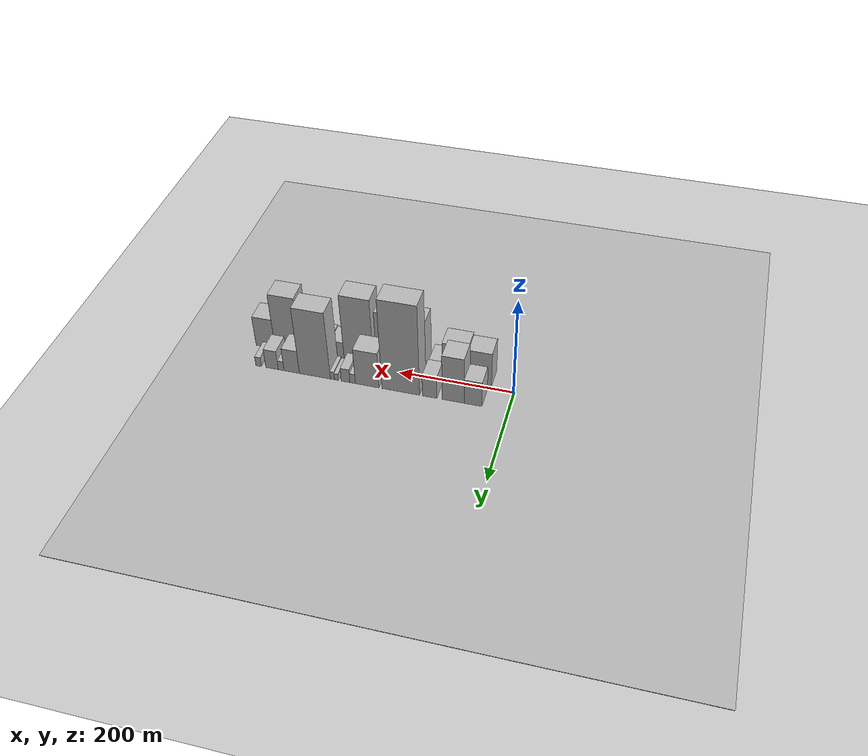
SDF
<?xml version="1.0" encoding="utf-8"?>

<sdf version="1.6">

   <world name="default">

      <gui fullscreen="0">

         <camera name="user_camera">

            <pose>-15 0 4.57585 0 0 0</pose>

            <view_controller>orbit</view_controller>

         </camera>

      </gui>

      <scene>

         <sky>

           <clouds>

             <speed>12</speed>

           </clouds>

         </sky>

         <ambient>0.4 0.4 0.4 1</ambient>

         <background>0.7 0.7 0.7 1</background>

         <shadows>1</shadows>

      </scene>

      <gravity>0 0 -9.8066</gravity>

      <magnetic_field>6e-06 2.3e-05 -4.2e-05</magnetic_field>

      <physics default="0" name="default_physics" type="ode">

         <ode>

            <solver>

               <type>quick</type>

               <iters>10</iters>

               <sor>1.0</sor>

               <use_dynamic_moi_rescaling>0</use_dynamic_moi_rescaling>

            </solver>

            <constraints>

               <cfm>0</cfm>

               <erp>0.2</erp>

               <contact_max_correcting_vel>100</contact_max_correcting_vel>

               <contact_surface_layer>0.001</contact_surface_layer>

            </constraints>

         </ode>

         <max_step_size>0.004</max_step_size>

         <real_time_factor>1</real_time_factor>

         <real_time_update_rate>250</real_time_update_rate>

      </physics>

      <light name="sun" type="directional">

         <cast_shadows>1</cast_shadows>

         <pose>0 0 10 0 0 0</pose>

         <diffuse>0.8 0.8 0.8 1</diffuse>

         <specular>0.2 0.2 0.2 1</specular>

         <attenuation>

            <range>1000</range>

            <constant>0.9</constant>

            <linear>0.01</linear>

            <quadratic>0.001</quadratic>

         </attenuation>

         <direction>-0.5 0.1 -0.9</direction>

      </light>

      <include>

         <name>ground_plane_1</name>

         <uri>model://HANNAS_ground_plane</uri>

         <pose>0 0 0  0 0 0</pose>

      </include>

      <include>

         <name>ground_plane_2</name>

         <uri>model://HANNAS_ground_plane</uri>

         <pose>100 0 0  0 0 0</pose>

      </include>

      <model name="building_1">

         <static>1</static>

         <pose frame="">60.2377 24.5000 0 0.000000 0.000000 1.570796</pose>

         <link name="link">

            <pose frame="">0 0 27.00 0 0 0</pose>

            <collision name="collision">

               <geometry>

                  <box>

                     <size>40.0000 30.4754 54.0000</size>

                  </box>

               </geometry>

               <max_contacts>10</max_contacts>

               <surface>

                  <contact>

                     <ode/>

                  </contact>

                  <bounce/>

                  <friction>

                     <torsional>

                        <ode/>

                     </torsional>

                     <ode/>

                  </friction>

               </surface>

            </collision>

            <visual name="visual">

               <cast_shadows>0</cast_shadows>

               <geometry>

                  <box>

                     <size>40.0000 30.4754 54.0000</size>

                  </box>

               </geometry>

               <material>

                  <script>

                     <uri>model://HANNAS_wall/materials/scripts</uri>

                     <uri>model://HANNAS_wall/materials/textures</uri>

                     <name>vrc/HANNAS_wall</name>

                  </script>

               </material>

            </visual>

            <self_collide>0</self_collide>

            <enable_wind>0</enable_wind>

            <kinematic>0</kinematic>

         </link>

      </model>

      <model name="building_2">

         <static>1</static>

         <pose frame="">94.3330 24.5000 0 0.000000 0.000000 1.570796</pose>

         <link name="link">

            <pose frame="">0 0 49.50 0 0 0</pose>

            <collision name="collision">

               <geometry>

                  <box>

                     <size>40.0000 37.7152 99.0000</size>

                  </box>

               </geometry>

               <max_contacts>10</max_contacts>

               <surface>

                  <contact>

                     <ode/>

                  </contact>

                  <bounce/>

                  <friction>

                     <torsional>

                        <ode/>

                     </torsional>

                     <ode/>

                  </friction>

               </surface>

            </collision>

            <visual name="visual">

               <cast_shadows>0</cast_shadows>

               <geometry>

                  <box>

                     <size>40.0000 37.7152 99.0000</size>

                  </box>

               </geometry>

               <material>

                  <script>

                     <uri>model://HANNAS_wall/materials/scripts</uri>

                     <uri>model://HANNAS_wall/materials/textures</uri>

                     <name>vrc/HANNAS_wall</name>

                  </script>

               </material>

            </visual>

            <self_collide>0</self_collide>

            <enable_wind>0</enable_wind>

            <kinematic>0</kinematic>

         </link>

      </model>

      <model name="building_3">

         <static>1</static>

         <pose frame="">134.7354 24.5000 0 0.000000 0.000000 1.570796</pose>

         <link name="link">

            <pose frame="">0 0 24.00 0 0 0</pose>

            <collision name="collision">

               <geometry>

                  <box>

                     <size>40.0000 25.0895 48.0000</size>

                  </box>

               </geometry>

               <max_contacts>10</max_contacts>

               <surface>

                  <contact>

                     <ode/>

                  </contact>

                  <bounce/>

                  <friction>

                     <torsional>

                        <ode/>

                     </torsional>

                     <ode/>

                  </friction>

               </surface>

            </collision>

            <visual name="visual">

               <cast_shadows>0</cast_shadows>

               <geometry>

                  <box>

                     <size>40.0000 25.0895 48.0000</size>

                  </box>

               </geometry>

               <material>

                  <script>

                     <uri>model://HANNAS_wall/materials/scripts</uri>

                     <uri>model://HANNAS_wall/materials/textures</uri>

                     <name>vrc/HANNAS_wall</name>

                  </script>

               </material>

            </visual>

            <self_collide>0</self_collide>

            <enable_wind>0</enable_wind>

            <kinematic>0</kinematic>

         </link>

      </model>

      <model name="building_4">

         <static>1</static>

         <pose frame="">185.3391 24.5000 0 0.000000 0.000000 1.570796</pose>

         <link name="link">

            <pose frame="">0 0 97.50 0 0 0</pose>

            <collision name="collision">

               <geometry>

                  <box>

                     <size>40.0000 66.1177 195.0000</size>

                  </box>

               </geometry>

               <max_contacts>10</max_contacts>

               <surface>

                  <contact>

                     <ode/>

                  </contact>

                  <bounce/>

                  <friction>

                     <torsional>

                        <ode/>

                     </torsional>

                     <ode/>

                  </friction>

               </surface>

            </collision>

            <visual name="visual">

               <cast_shadows>0</cast_shadows>

               <geometry>

                  <box>

                     <size>40.0000 66.1177 195.0000</size>

                  </box>

               </geometry>

               <material>

                  <script>

                     <uri>model://HANNAS_wall/materials/scripts</uri>

                     <uri>model://HANNAS_wall/materials/textures</uri>

                     <name>vrc/HANNAS_wall</name>

                  </script>

               </material>

            </visual>

            <self_collide>0</self_collide>

            <enable_wind>0</enable_wind>

            <kinematic>0</kinematic>

         </link>

      </model>

      <model name="building_5">

         <static>1</static>

         <pose frame="">244.4486 24.5000 0 0.000000 0.000000 1.570796</pose>

         <link name="link">

            <pose frame="">0 0 39.00 0 0 0</pose>

            <collision name="collision">

               <geometry>

                  <box>

                     <size>40.0000 42.1014 78.0000</size>

                  </box>

               </geometry>

               <max_contacts>10</max_contacts>

               <surface>

                  <contact>

                     <ode/>

                  </contact>

                  <bounce/>

                  <friction>

                     <torsional>

                        <ode/>

                     </torsional>

                     <ode/>

                  </friction>

               </surface>

            </collision>

            <visual name="visual">

               <cast_shadows>0</cast_shadows>

               <geometry>

                  <box>

                     <size>40.0000 42.1014 78.0000</size>

                  </box>

               </geometry>

               <material>

                  <script>

                     <uri>model://HANNAS_wall/materials/scripts</uri>

                     <uri>model://HANNAS_wall/materials/textures</uri>

                     <name>vrc/HANNAS_wall</name>

                  </script>

               </material>

            </visual>

            <self_collide>0</self_collide>

            <enable_wind>0</enable_wind>

            <kinematic>0</kinematic>

         </link>

      </model>

      <model name="building_6">

         <static>1</static>

         <pose frame="">270.3058 24.5000 0 0.000000 0.000000 1.570796</pose>

         <link name="link">

            <pose frame="">0 0 10.50 0 0 0</pose>

            <collision name="collision">

               <geometry>

                  <box>

                     <size>40.0000 9.6129 21.0000</size>

                  </box>

               </geometry>

               <max_contacts>10</max_contacts>

               <surface>

                  <contact>

                     <ode/>

                  </contact>

                  <bounce/>

                  <friction>

                     <torsional>

                        <ode/>

                     </torsional>

                     <ode/>

                  </friction>

               </surface>

            </collision>

            <visual name="visual">

               <cast_shadows>0</cast_shadows>

               <geometry>

                  <box>

                     <size>40.0000 9.6129 21.0000</size>

                  </box>

               </geometry>

               <material>

                  <script>

                     <uri>model://HANNAS_wall/materials/scripts</uri>

                     <uri>model://HANNAS_wall/materials/textures</uri>

                     <name>vrc/HANNAS_wall</name>

                  </script>

               </material>

            </visual>

            <self_collide>0</self_collide>

            <enable_wind>0</enable_wind>

            <kinematic>0</kinematic>

         </link>

      </model>

      <model name="building_7">

         <static>1</static>

         <pose frame="">282.9317 24.5000 0 0.000000 0.000000 1.570796</pose>

         <link name="link">

            <pose frame="">0 0 15.00 0 0 0</pose>

            <collision name="collision">

               <geometry>

                  <box>

                     <size>40.0000 15.6388 30.0000</size>

                  </box>

               </geometry>

               <max_contacts>10</max_contacts>

               <surface>

                  <contact>

                     <ode/>

                  </contact>

                  <bounce/>

                  <friction>

                     <torsional>

                        <ode/>

                     </torsional>

                     <ode/>

                  </friction>

               </surface>

            </collision>

            <visual name="visual">

               <cast_shadows>0</cast_shadows>

               <geometry>

                  <box>

                     <size>40.0000 15.6388 30.0000</size>

                  </box>

               </geometry>

               <material>

                  <script>

                     <uri>model://HANNAS_wall/materials/scripts</uri>

                     <uri>model://HANNAS_wall/materials/textures</uri>

                     <name>vrc/HANNAS_wall</name>

                  </script>

               </material>

            </visual>

            <self_collide>0</self_collide>

            <enable_wind>0</enable_wind>

            <kinematic>0</kinematic>

         </link>

      </model>

      <model name="building_8">

         <static>1</static>

         <pose frame="">299.2666 24.5000 0 0.000000 0.000000 1.570796</pose>

         <link name="link">

            <pose frame="">0 0 7.50 0 0 0</pose>

            <collision name="collision">

               <geometry>

                  <box>

                     <size>40.0000 7.0310 15.0000</size>

                  </box>

               </geometry>

               <max_contacts>10</max_contacts>

               <surface>

                  <contact>

                     <ode/>

                  </contact>

                  <bounce/>

                  <friction>

                     <torsional>

                        <ode/>

                     </torsional>

                     <ode/>

                  </friction>

               </surface>

            </collision>

            <visual name="visual">

               <cast_shadows>0</cast_shadows>

               <geometry>

                  <box>

                     <size>40.0000 7.0310 15.0000</size>

                  </box>

               </geometry>

               <material>

                  <script>

                     <uri>model://HANNAS_wall/materials/scripts</uri>

                     <uri>model://HANNAS_wall/materials/textures</uri>

                     <name>vrc/HANNAS_wall</name>

                  </script>

               </material>

            </visual>

            <self_collide>0</self_collide>

            <enable_wind>0</enable_wind>

            <kinematic>0</kinematic>

         </link>

      </model>

      <model name="building_9">

         <static>1</static>

         <pose frame="">306.3951 24.5000 0 0.000000 0.000000 1.570796</pose>

         <link name="link">

            <pose frame="">0 0 9.00 0 0 0</pose>

            <collision name="collision">

               <geometry>

                  <box>

                     <size>40.0000 7.2258 18.0000</size>

                  </box>

               </geometry>

               <max_contacts>10</max_contacts>

               <surface>

                  <contact>

                     <ode/>

                  </contact>

                  <bounce/>

                  <friction>

                     <torsional>

                        <ode/>

                     </torsional>

                     <ode/>

                  </friction>

               </surface>

            </collision>

            <visual name="visual">

               <cast_shadows>0</cast_shadows>

               <geometry>

                  <box>

                     <size>40.0000 7.2258 18.0000</size>

                  </box>

               </geometry>

               <material>

                  <script>

                     <uri>model://HANNAS_wall/materials/scripts</uri>

                     <uri>model://HANNAS_wall/materials/textures</uri>

                     <name>vrc/HANNAS_wall</name>

                  </script>

               </material>

            </visual>

            <self_collide>0</self_collide>

            <enable_wind>0</enable_wind>

            <kinematic>0</kinematic>

         </link>

      </model>

      <model name="building_10">

         <static>1</static>

         <pose frame="">338.0191 24.5000 0 0.000000 0.000000 1.570796</pose>

         <link name="link">

            <pose frame="">0 0 73.50 0 0 0</pose>

            <collision name="collision">

               <geometry>

                  <box>

                     <size>40.0000 56.0221 147.0000</size>

                  </box>

               </geometry>

               <max_contacts>10</max_contacts>

               <surface>

                  <contact>

                     <ode/>

                  </contact>

                  <bounce/>

                  <friction>

                     <torsional>

                        <ode/>

                     </torsional>

                     <ode/>

                  </friction>

               </surface>

            </collision>

            <visual name="visual">

               <cast_shadows>0</cast_shadows>

               <geometry>

                  <box>

                     <size>40.0000 56.0221 147.0000</size>

                  </box>

               </geometry>

               <material>

                  <script>

                     <uri>model://HANNAS_wall/materials/scripts</uri>

                     <uri>model://HANNAS_wall/materials/textures</uri>

                     <name>vrc/HANNAS_wall</name>

                  </script>

               </material>

            </visual>

            <self_collide>0</self_collide>

            <enable_wind>0</enable_wind>

            <kinematic>0</kinematic>

         </link>

      </model>

      <model name="building_11">

         <static>1</static>

         <pose frame="">379.9936 24.5000 0 0.000000 0.000000 1.570796</pose>

         <link name="link">

            <pose frame="">0 0 25.50 0 0 0</pose>

            <collision name="collision">

               <geometry>

                  <box>

                     <size>40.0000 27.9270 51.0000</size>

                  </box>

               </geometry>

               <max_contacts>10</max_contacts>

               <surface>

                  <contact>

                     <ode/>

                  </contact>

                  <bounce/>

                  <friction>

                     <torsional>

                        <ode/>

                     </torsional>

                     <ode/>

                  </friction>

               </surface>

            </collision>

            <visual name="visual">

               <cast_shadows>0</cast_shadows>

               <geometry>

                  <box>

                     <size>40.0000 27.9270 51.0000</size>

                  </box>

               </geometry>

               <material>

                  <script>

                     <uri>model://HANNAS_wall/materials/scripts</uri>

                     <uri>model://HANNAS_wall/materials/textures</uri>

                     <name>vrc/HANNAS_wall</name>

                  </script>

               </material>

            </visual>

            <self_collide>0</self_collide>

            <enable_wind>0</enable_wind>

            <kinematic>0</kinematic>

         </link>

      </model>

      <model name="building_12">

         <static>1</static>

         <pose frame="">399.2017 24.5000 0 0.000000 0.000000 1.570796</pose>

         <link name="link">

            <pose frame="">0 0 10.50 0 0 0</pose>

            <collision name="collision">

               <geometry>

                  <box>

                     <size>40.0000 10.4891 21.0000</size>

                  </box>

               </geometry>

               <max_contacts>10</max_contacts>

               <surface>

                  <contact>

                     <ode/>

                  </contact>

                  <bounce/>

                  <friction>

                     <torsional>

                        <ode/>

                     </torsional>

                     <ode/>

                  </friction>

               </surface>

            </collision>

            <visual name="visual">

               <cast_shadows>0</cast_shadows>

               <geometry>

                  <box>

                     <size>40.0000 10.4891 21.0000</size>

                  </box>

               </geometry>

               <material>

                  <script>

                     <uri>model://HANNAS_wall/materials/scripts</uri>

                     <uri>model://HANNAS_wall/materials/textures</uri>

                     <name>vrc/HANNAS_wall</name>

                  </script>

               </material>

            </visual>

            <self_collide>0</self_collide>

            <enable_wind>0</enable_wind>

            <kinematic>0</kinematic>

         </link>

      </model>

      <model name="building_13">

         <static>1</static>

         <pose frame="">415.9238 24.5000 0 0.000000 0.000000 1.570796</pose>

         <link name="link">

            <pose frame="">0 0 21.00 0 0 0</pose>

            <collision name="collision">

               <geometry>

                  <box>

                     <size>40.0000 22.9552 42.0000</size>

                  </box>

               </geometry>

               <max_contacts>10</max_contacts>

               <surface>

                  <contact>

                     <ode/>

                  </contact>

                  <bounce/>

                  <friction>

                     <torsional>

                        <ode/>

                     </torsional>

                     <ode/>

                  </friction>

               </surface>

            </collision>

            <visual name="visual">

               <cast_shadows>0</cast_shadows>

               <geometry>

                  <box>

                     <size>40.0000 22.9552 42.0000</size>

                  </box>

               </geometry>

               <material>

                  <script>

                     <uri>model://HANNAS_wall/materials/scripts</uri>

                     <uri>model://HANNAS_wall/materials/textures</uri>

                     <name>vrc/HANNAS_wall</name>

                  </script>

               </material>

            </visual>

            <self_collide>0</self_collide>

            <enable_wind>0</enable_wind>

            <kinematic>0</kinematic>

         </link>

      </model>

      <model name="building_14">

         <static>1</static>

         <pose frame="">440.4947 24.5000 0 0.000000 0.000000 1.570796</pose>

         <link name="link">

            <pose frame="">0 0 10.50 0 0 0</pose>

            <collision name="collision">

               <geometry>

                  <box>

                     <size>40.0000 10.1867 21.0000</size>

                  </box>

               </geometry>

               <max_contacts>10</max_contacts>

               <surface>

                  <contact>

                     <ode/>

                  </contact>

                  <bounce/>

                  <friction>

                     <torsional>

                        <ode/>

                     </torsional>

                     <ode/>

                  </friction>

               </surface>

            </collision>

            <visual name="visual">

               <cast_shadows>0</cast_shadows>

               <geometry>

                  <box>

                     <size>40.0000 10.1867 21.0000</size>

                  </box>

               </geometry>

               <material>

                  <script>

                     <uri>model://HANNAS_wall/materials/scripts</uri>

                     <uri>model://HANNAS_wall/materials/textures</uri>

                     <name>vrc/HANNAS_wall</name>

                  </script>

               </material>

            </visual>

            <self_collide>0</self_collide>

            <enable_wind>0</enable_wind>

            <kinematic>0</kinematic>

         </link>

      </model>

      <model name="building_15">

         <static>1</static>

         <pose frame="">60.3932 -24.5000 0 0.000000 0.000000 1.570796</pose>

         <link name="link">

            <pose frame="">0 0 37.50 0 0 0</pose>

            <collision name="collision">

               <geometry>

                  <box>

                     <size>40.0000 40.7864 75.0000</size>

                  </box>

               </geometry>

               <max_contacts>10</max_contacts>

               <surface>

                  <contact>

                     <ode/>

                  </contact>

                  <bounce/>

                  <friction>

                     <torsional>

                        <ode/>

                     </torsional>

                     <ode/>

                  </friction>

               </surface>

            </collision>

            <visual name="visual">

               <cast_shadows>0</cast_shadows>

               <geometry>

                  <box>

                     <size>40.0000 40.7864 75.0000</size>

                  </box>

               </geometry>

               <material>

                  <script>

                     <uri>model://HANNAS_wall/materials/scripts</uri>

                     <uri>model://HANNAS_wall/materials/textures</uri>

                     <name>vrc/HANNAS_wall</name>

                  </script>

               </material>

            </visual>

            <self_collide>0</self_collide>

            <enable_wind>0</enable_wind>

            <kinematic>0</kinematic>

         </link>

      </model>

      <model name="building_16">

         <static>1</static>

         <pose frame="">103.4413 -24.5000 0 0.000000 0.000000 1.570796</pose>

         <link name="link">

            <pose frame="">0 0 40.50 0 0 0</pose>

            <collision name="collision">

               <geometry>

                  <box>

                     <size>40.0000 45.3098 81.0000</size>

                  </box>

               </geometry>

               <max_contacts>10</max_contacts>

               <surface>

                  <contact>

                     <ode/>

                  </contact>

                  <bounce/>

                  <friction>

                     <torsional>

                        <ode/>

                     </torsional>

                     <ode/>

                  </friction>

               </surface>

            </collision>

            <visual name="visual">

               <cast_shadows>0</cast_shadows>

               <geometry>

                  <box>

                     <size>40.0000 45.3098 81.0000</size>

                  </box>

               </geometry>

               <material>

                  <script>

                     <uri>model://HANNAS_wall/materials/scripts</uri>

                     <uri>model://HANNAS_wall/materials/textures</uri>

                     <name>vrc/HANNAS_wall</name>

                  </script>

               </material>

            </visual>

            <self_collide>0</self_collide>

            <enable_wind>0</enable_wind>

            <kinematic>0</kinematic>

         </link>

      </model>

      <model name="building_17">

         <static>1</static>

         <pose frame="">137.3759 -24.5000 0 0.000000 0.000000 1.570796</pose>

         <link name="link">

            <pose frame="">0 0 19.50 0 0 0</pose>

            <collision name="collision">

               <geometry>

                  <box>

                     <size>40.0000 22.5594 39.0000</size>

                  </box>

               </geometry>

               <max_contacts>10</max_contacts>

               <surface>

                  <contact>

                     <ode/>

                  </contact>

                  <bounce/>

                  <friction>

                     <torsional>

                        <ode/>

                     </torsional>

                     <ode/>

                  </friction>

               </surface>

            </collision>

            <visual name="visual">

               <cast_shadows>0</cast_shadows>

               <geometry>

                  <box>

                     <size>40.0000 22.5594 39.0000</size>

                  </box>

               </geometry>

               <material>

                  <script>

                     <uri>model://HANNAS_wall/materials/scripts</uri>

                     <uri>model://HANNAS_wall/materials/textures</uri>

                     <name>vrc/HANNAS_wall</name>

                  </script>

               </material>

            </visual>

            <self_collide>0</self_collide>

            <enable_wind>0</enable_wind>

            <kinematic>0</kinematic>

         </link>

      </model>

      <model name="building_18">

         <static>1</static>

         <pose frame="">178.7243 -24.5000 0 0.000000 0.000000 1.570796</pose>

         <link name="link">

            <pose frame="">0 0 58.50 0 0 0</pose>

            <collision name="collision">

               <geometry>

                  <box>

                     <size>40.0000 46.1374 117.0000</size>

                  </box>

               </geometry>

               <max_contacts>10</max_contacts>

               <surface>

                  <contact>

                     <ode/>

                  </contact>

                  <bounce/>

                  <friction>

                     <torsional>

                        <ode/>

                     </torsional>

                     <ode/>

                  </friction>

               </surface>

            </collision>

            <visual name="visual">

               <cast_shadows>0</cast_shadows>

               <geometry>

                  <box>

                     <size>40.0000 46.1374 117.0000</size>

                  </box>

               </geometry>

               <material>

                  <script>

                     <uri>model://HANNAS_wall/materials/scripts</uri>

                     <uri>model://HANNAS_wall/materials/textures</uri>

                     <name>vrc/HANNAS_wall</name>

                  </script>

               </material>

            </visual>

            <self_collide>0</self_collide>

            <enable_wind>0</enable_wind>

            <kinematic>0</kinematic>

         </link>

      </model>

      <model name="building_19">

         <static>1</static>

         <pose frame="">222.1818 -24.5000 0 0.000000 0.000000 1.570796</pose>

         <link name="link">

            <pose frame="">0 0 61.50 0 0 0</pose>

            <collision name="collision">

               <geometry>

                  <box>

                     <size>40.0000 40.7775 123.0000</size>

                  </box>

               </geometry>

               <max_contacts>10</max_contacts>

               <surface>

                  <contact>

                     <ode/>

                  </contact>

                  <bounce/>

                  <friction>

                     <torsional>

                        <ode/>

                     </torsional>

                     <ode/>

                  </friction>

               </surface>

            </collision>

            <visual name="visual">

               <cast_shadows>0</cast_shadows>

               <geometry>

                  <box>

                     <size>40.0000 40.7775 123.0000</size>

                  </box>

               </geometry>

               <material>

                  <script>

                     <uri>model://HANNAS_wall/materials/scripts</uri>

                     <uri>model://HANNAS_wall/materials/textures</uri>

                     <name>vrc/HANNAS_wall</name>

                  </script>

               </material>

            </visual>

            <self_collide>0</self_collide>

            <enable_wind>0</enable_wind>

            <kinematic>0</kinematic>

         </link>

      </model>

      <model name="building_20">

         <static>1</static>

         <pose frame="">275.0871 -24.5000 0 0.000000 0.000000 1.570796</pose>

         <link name="link">

            <pose frame="">0 0 73.50 0 0 0</pose>

            <collision name="collision">

               <geometry>

                  <box>

                     <size>40.0000 53.0330 147.0000</size>

                  </box>

               </geometry>

               <max_contacts>10</max_contacts>

               <surface>

                  <contact>

                     <ode/>

                  </contact>

                  <bounce/>

                  <friction>

                     <torsional>

                        <ode/>

                     </torsional>

                     <ode/>

                  </friction>

               </surface>

            </collision>

            <visual name="visual">

               <cast_shadows>0</cast_shadows>

               <geometry>

                  <box>

                     <size>40.0000 53.0330 147.0000</size>

                  </box>

               </geometry>

               <material>

                  <script>

                     <uri>model://HANNAS_wall/materials/scripts</uri>

                     <uri>model://HANNAS_wall/materials/textures</uri>

                     <name>vrc/HANNAS_wall</name>

                  </script>

               </material>

            </visual>

            <self_collide>0</self_collide>

            <enable_wind>0</enable_wind>

            <kinematic>0</kinematic>

         </link>

      </model>

      <model name="building_21">

         <static>1</static>

         <pose frame="">312.4936 -24.5000 0 0.000000 0.000000 1.570796</pose>

         <link name="link">

            <pose frame="">0 0 21.00 0 0 0</pose>

            <collision name="collision">

               <geometry>

                  <box>

                     <size>40.0000 21.7801 42.0000</size>

                  </box>

               </geometry>

               <max_contacts>10</max_contacts>

               <surface>

                  <contact>

                     <ode/>

                  </contact>

                  <bounce/>

                  <friction>

                     <torsional>

                        <ode/>

                     </torsional>

                     <ode/>

                  </friction>

               </surface>

            </collision>

            <visual name="visual">

               <cast_shadows>0</cast_shadows>

               <geometry>

                  <box>

                     <size>40.0000 21.7801 42.0000</size>

                  </box>

               </geometry>

               <material>

                  <script>

                     <uri>model://HANNAS_wall/materials/scripts</uri>

                     <uri>model://HANNAS_wall/materials/textures</uri>

                     <name>vrc/HANNAS_wall</name>

                  </script>

               </material>

            </visual>

            <self_collide>0</self_collide>

            <enable_wind>0</enable_wind>

            <kinematic>0</kinematic>

         </link>

      </model>

      <model name="building_22">

         <static>1</static>

         <pose frame="">334.6369 -24.5000 0 0.000000 0.000000 1.570796</pose>

         <link name="link">

            <pose frame="">0 0 22.50 0 0 0</pose>

            <collision name="collision">

               <geometry>

                  <box>

                     <size>40.0000 22.5064 45.0000</size>

                  </box>

               </geometry>

               <max_contacts>10</max_contacts>

               <surface>

                  <contact>

                     <ode/>

                  </contact>

                  <bounce/>

                  <friction>

                     <torsional>

                        <ode/>

                     </torsional>

                     <ode/>

                  </friction>

               </surface>

            </collision>

            <visual name="visual">

               <cast_shadows>0</cast_shadows>

               <geometry>

                  <box>

                     <size>40.0000 22.5064 45.0000</size>

                  </box>

               </geometry>

               <material>

                  <script>

                     <uri>model://HANNAS_wall/materials/scripts</uri>

                     <uri>model://HANNAS_wall/materials/textures</uri>

                     <name>vrc/HANNAS_wall</name>

                  </script>

               </material>

            </visual>

            <self_collide>0</self_collide>

            <enable_wind>0</enable_wind>

            <kinematic>0</kinematic>

         </link>

      </model>

      <model name="building_23">

         <static>1</static>

         <pose frame="">364.2754 -24.5000 0 0.000000 0.000000 1.570796</pose>

         <link name="link">

            <pose frame="">0 0 36.00 0 0 0</pose>

            <collision name="collision">

               <geometry>

                  <box>

                     <size>40.0000 36.7706 72.0000</size>

                  </box>

               </geometry>

               <max_contacts>10</max_contacts>

               <surface>

                  <contact>

                     <ode/>

                  </contact>

                  <bounce/>

                  <friction>

                     <torsional>

                        <ode/>

                     </torsional>

                     <ode/>

                  </friction>

               </surface>

            </collision>

            <visual name="visual">

               <cast_shadows>0</cast_shadows>

               <geometry>

                  <box>

                     <size>40.0000 36.7706 72.0000</size>

                  </box>

               </geometry>

               <material>

                  <script>

                     <uri>model://HANNAS_wall/materials/scripts</uri>

                     <uri>model://HANNAS_wall/materials/textures</uri>

                     <name>vrc/HANNAS_wall</name>

                  </script>

               </material>

            </visual>

            <self_collide>0</self_collide>

            <enable_wind>0</enable_wind>

            <kinematic>0</kinematic>

         </link>

      </model>

      <model name="building_24">

         <static>1</static>

         <pose frame="">405.8916 -24.5000 0 0.000000 0.000000 1.570796</pose>

         <link name="link">

            <pose frame="">0 0 61.50 0 0 0</pose>

            <collision name="collision">

               <geometry>

                  <box>

                     <size>40.0000 46.4619 123.0000</size>

                  </box>

               </geometry>

               <max_contacts>10</max_contacts>

               <surface>

                  <contact>

                     <ode/>

                  </contact>

                  <bounce/>

                  <friction>

                     <torsional>

                        <ode/>

                     </torsional>

                     <ode/>

                  </friction>

               </surface>

            </collision>

            <visual name="visual">

               <cast_shadows>0</cast_shadows>

               <geometry>

                  <box>

                     <size>40.0000 46.4619 123.0000</size>

                  </box>

               </geometry>

               <material>

                  <script>

                     <uri>model://HANNAS_wall/materials/scripts</uri>

                     <uri>model://HANNAS_wall/materials/textures</uri>

                     <name>vrc/HANNAS_wall</name>

                  </script>

               </material>

            </visual>

            <self_collide>0</self_collide>

            <enable_wind>0</enable_wind>

            <kinematic>0</kinematic>

         </link>

      </model>

      <model name="building_25">

         <static>1</static>

         <pose frame="">446.9396 -24.5000 0 0.000000 0.000000 1.570796</pose>

         <link name="link">

            <pose frame="">0 0 33.00 0 0 0</pose>

            <collision name="collision">

               <geometry>

                  <box>

                     <size>40.0000 35.6342 66.0000</size>

                  </box>

               </geometry>

               <max_contacts>10</max_contacts>

               <surface>

                  <contact>

                     <ode/>

                  </contact>

                  <bounce/>

                  <friction>

                     <torsional>

                        <ode/>

                     </torsional>

                     <ode/>

                  </friction>

               </surface>

            </collision>

            <visual name="visual">

               <cast_shadows>0</cast_shadows>

               <geometry>

                  <box>

                     <size>40.0000 35.6342 66.0000</size>

                  </box>

               </geometry>

               <material>

                  <script>

                     <uri>model://HANNAS_wall/materials/scripts</uri>

                     <uri>model://HANNAS_wall/materials/textures</uri>

                     <name>vrc/HANNAS_wall</name>

                  </script>

               </material>

            </visual>

            <self_collide>0</self_collide>

            <enable_wind>0</enable_wind>

            <kinematic>0</kinematic>

         </link>

      </model>

   </world>

</sdf>

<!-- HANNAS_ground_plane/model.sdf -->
<sdf version="1.4">
<model name="HANNAS_ground_plane">
  <static>true</static>
    <link name="link">
      <collision name="collision">
        <geometry>
          <plane>
            <normal>0 0 1</normal>
            <size>1000 1000</size>
          </plane>
        </geometry>
        <surface>
          <friction>
            <ode>
              <mu>100</mu>
              <mu2>50</mu2>
            </ode>
          </friction>
        </surface>
      </collision>
      <visual name="visual">
        <cast_shadows>false</cast_shadows>
        <geometry>
          <plane>
            <normal>0 0 1</normal>
            <size>1000 1000</size>
          </plane>
        </geometry>
        <material>
          <script>
            <uri>model://HANNAS_ground_plane/materials/scripts/HANNAS_ground_plane.material</uri>
	    <uri>model://HANNAS_ground_plane/materials/textures</uri>
            <name>HANNASGroundPlane/Image</name>
          </script>
        </material>
      </visual>
    </link>
  </model>
</sdf>
